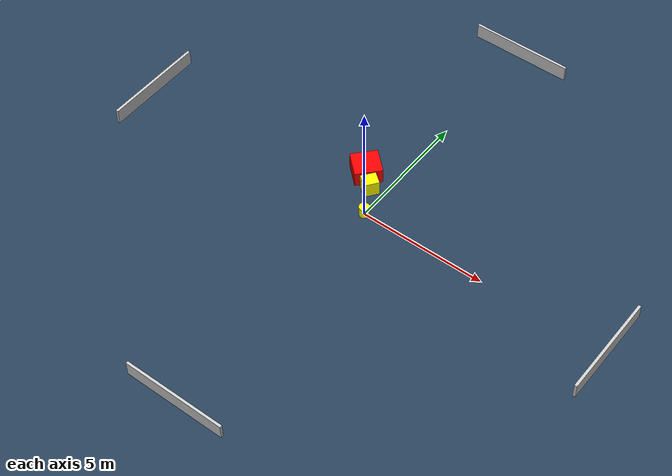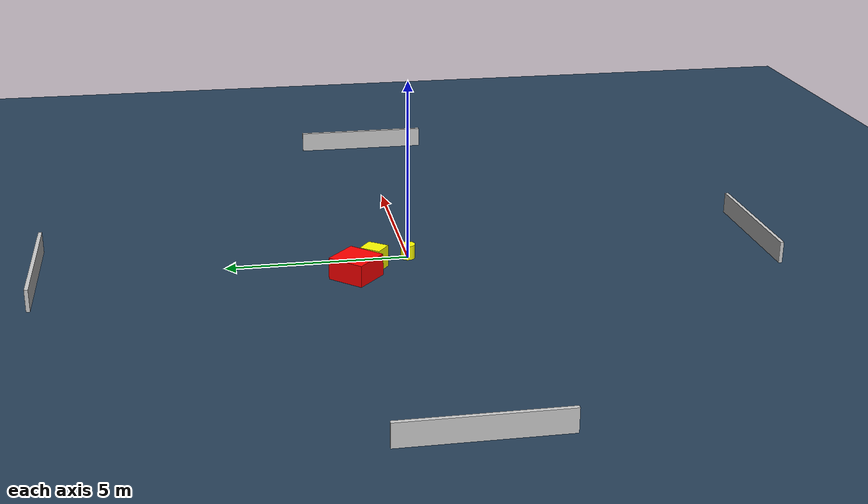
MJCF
<?xml version="1.0" ?>
<mujoco model="generated_environment">
  <option timestep="0.01" integrator="RK4" cone="elliptic"/>
  <default>
    <geom density="1"/>
  </default>
  <asset>
    <texture builtin="gradient" height="3072" name="skybox" rgb1="0.3 0.5 0.7" rgb2="0 0 0" type="skybox" width="512"/>
    <texture builtin="checker" height="300" name="groundplane" rgb1="0.2 0.3 0.4" rgb2="0.1 0.2 0.3" type="2d" width="300"/>
    <material name="groundplane" reflectance="0.2" texrepeat="5 5" texture="groundplane"/>
  </asset>
  <worldbody>
    <light dir="0 0 -1" directional="true" pos="0 0 1.5"/>
    <geom condim="3" friction="0.5 0.005 0.001" material="groundplane" name="floor" pos="0 0 0" size="0 0 0.05" type="plane"/>
    <body name="walls">
      <geom name="wall_1" condim="4" pos="-10.0 0.0 0.3" rgba="0.800000011920929 0.800000011920929 0.800000011920929 1.0" size="0.05 2.0 0.3" type="box"/>
      <geom name="wall_2" condim="4" pos="10.0 0.0 0.3" rgba="0.800000011920929 0.800000011920929 0.800000011920929 1.0" size="0.05 2.0 0.3" type="box"/>
      <geom name="wall_3" condim="4" pos="0.0 -10.0 0.3" rgba="0.800000011920929 0.800000011920929 0.800000011920929 1.0" size="2.0 0.05 0.3" type="box"/>
      <geom name="wall_4" condim="4" pos="0.0 10.0 0.3" rgba="0.800000011920929 0.800000011920929 0.800000011920929 1.0" size="2.0 0.05 0.3" type="box"/>
    </body>
    <body name="robot">
      <joint name="joint_x" type="slide" pos="0 0 0" axis="1 0 0"/>
      <joint name="joint_y" type="slide" pos="0 0 0" axis="0 1 0"/>
      <geom name="robot" type="cylinder" pos="0.0 0.0 0.2" size="0.2 0.2 0.0" mass="5.0" friction="1.0 0.005 0.0001" condim="4" rgba="1.0 1.0 0.0 1.0"/>
    </body>
    <body name="obstacle_1_movable">
      <geom name="obstacle_1_movable" condim="4" pos="-0.5217602546707635 1.0080485736508518 0.3" euler="0 0 323.06291716432554" friction="0.0 0.005 0.001" rgba="1.0 1.0 0.0 1.0" size="0.2552727511712321 0.2958731331707798 0.3" type="box" mass="0.1"/>
      <joint type="free"/>
    </body>
    <body name="obstacle_2_static">
      <geom name="obstacle_2_static" condim="4" pos="-1.1121805922826848 1.5761566508430673 0.3" euler="0 0 47.86375170633567" friction="0.0 0.005 0.001" rgba="1.0 0.0 0.0 1.0" size="0.5240284329949396 0.5092243698698893 0.3" type="box"/>
    </body>
  </worldbody>
  <actuator>
    <motor name="actuator_x" joint="joint_x" gear="1" ctrlrange="-1 1"/>
    <motor name="actuator_y" joint="joint_y" gear="1" ctrlrange="-1 1"/>
  </actuator>
</mujoco>
